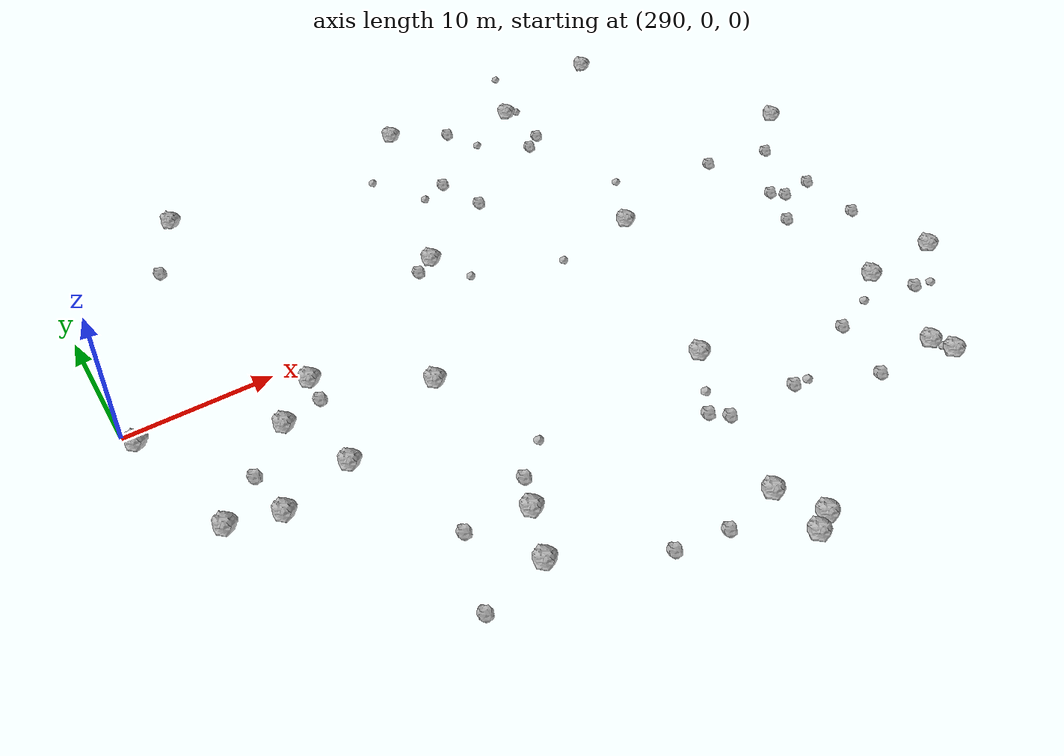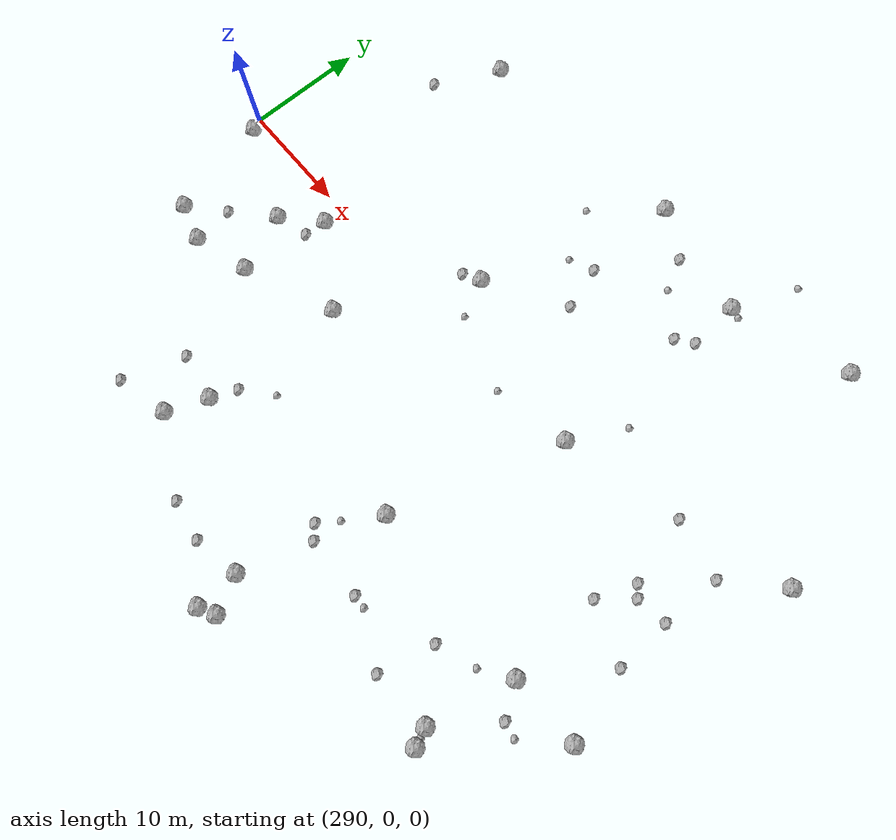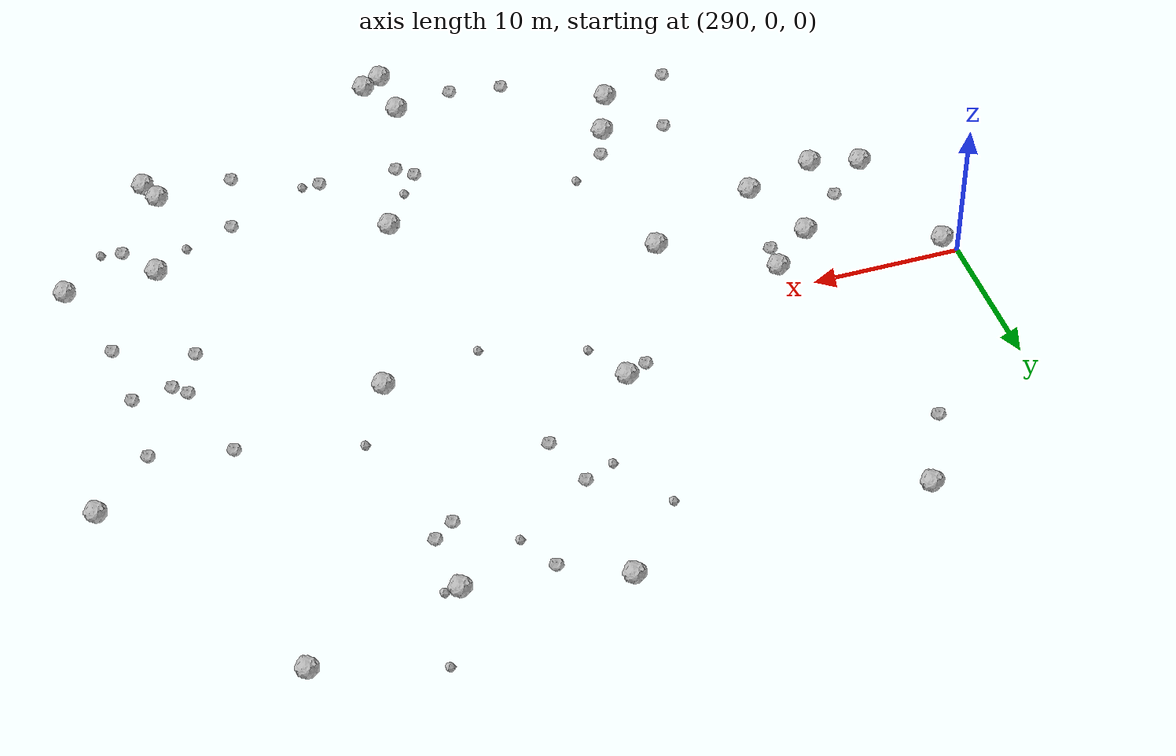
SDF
<sdf version="1.6">
 <world name="default">
  <include><uri>model://sun</uri></include>
  <model name="rock1_8_3">
   <include><uri>model://rock1</uri><pose>322.35427573617596 -27.8120786566923 0.5 0 0 0</pose></include>
  </model>
  <model name="rock1_8_4">
   <include><uri>model://rock1</uri><pose>300.9586548616102 -9.510141757993889 0.5 0 0 0</pose></include>
  </model>
  <model name="rock1_8_5">
   <include><uri>model://rock1</uri><pose>308.670472078037 -6.257436413434906 0.5 0 0 0</pose></include>
  </model>
  <model name="rock1_8_6">
   <include><uri>model://rock1</uri><pose>329.78217315418846 18.626726839483524 0.5 0 0 0</pose></include>
  </model>
  <model name="rock1_8_7">
   <include><uri>model://rock1</uri><pose>290.67351863067097 -1.0464039985542612 0.5 0 0 0</pose></include>
  </model>
  <model name="rock1_8_8">
   <include><uri>model://rock1</uri><pose>298.88788457624474 -4.578165748046363 0.5 0 0 0</pose></include>
  </model>
  <model name="rock1_8_9">
   <include><uri>model://rock1</uri><pose>339.14073869403353 -22.465012377297057 0.5 0 0 0</pose></include>
  </model>
  <model name="rock1_8_10">
   <include><uri>model://rock1</uri><pose>348.7971757759575 6.022667178202482 0.5 0 0 0</pose></include>
  </model>
  <model name="rock1_8_11">
   <include><uri>model://rock1</uri><pose>306.8754588863286 -21.741113683573072 0.5 0 0 0</pose></include>
  </model>
  <model name="rock1_8_12">
   <include><uri>model://rock1</uri><pose>324.69543472986385 -13.538364629315382 0.5 0 0 0</pose></include>
  </model>
  <model name="rock1_8_13">
   <include><uri>model://rock1</uri><pose>296.1206339826503 -10.89327196215632 0.5 0 0 0</pose></include>
  </model>
  <model name="rock1_8_14">
   <include><uri>model://rock1</uri><pose>339.9978219828622 21.874479917883882 0.5 0 0 0</pose></include>
  </model>
  <model name="rock1_8_15">
   <include><uri>model://rock1</uri><pose>319.7007215105777 20.78113839658375 0.5 0 0 0</pose></include>
  </model>
  <model name="rock1_8_16">
   <include><uri>model://rock1</uri><pose>314.519607033885 4.690379749493346 0.5 0 0 0</pose></include>
  </model>
  <model name="rock1_8_17">
   <include><uri>model://rock1</uri><pose>308.24518439240467 -18.341041085042328 0.5 0 0 0</pose></include>
  </model>
  <model name="rock1_8_18">
   <include><uri>model://rock1</uri><pose>338.5214885994548 -21.008370887613786 0.5 0 0 0</pose></include>
  </model>
  <model name="rock1_8_19">
   <include><uri>model://rock1</uri><pose>329.28288420714756 0.7832009118711483 0.5 0 0 0</pose></include>
  </model>
  <model name="rock1_8_20">
   <include><uri>model://rock1</uri><pose>300.07731475310794 19.298754428426996 0.5 0 0 0</pose></include>
  </model>
  <model name="rock1_8_21">
   <include><uri>model://rock1</uri><pose>301.8533972839135 -1.839665752010113 0.5 0 0 0</pose></include>
  </model>
  <model name="rock1_8_22">
   <include><uri>model://rock1</uri><pose>346.3531371436534 -13.710578872330444 0.5 0 0 0</pose></include>
  </model>
  <model name="rock1_8_23">
   <include><uri>model://rock1</uri><pose>320.8395063264479 -24.908244074515633 0.5 0 0 0</pose></include>
  </model>
  <model name="rock1_8_24">
   <include><uri>model://rock1</uri><pose>292.8788406539268 -9.97718281764698 0.5 0 0 0</pose></include>
  </model>
  <model name="rock1_8_25">
   <include><uri>model://rock1</uri><pose>321.00270330148766 -28.539713879244758 0.5 0 0 0</pose></include>
  </model>
  <model name="rock1_8_26">
   <include><uri>model://rock1</uri><pose>340.265943749233 -13.93120928389839 0.5 0 0 0</pose></include>
  </model>
  <model name="rock2_8_0">
   <include><uri>model://rock2</uri><pose>341.9350264234805 -16.429490157431772 0.3 0 0 0</pose></include>
  </model>
  <model name="rock2_8_1">
   <include><uri>model://rock2</uri><pose>302.2879323446587 -22.849262023688862 0.3 0 0 0</pose></include>
  </model>
  <model name="rock2_8_2">
   <include><uri>model://rock2</uri><pose>297.29031121959025 13.903346981176142 0.3 0 0 0</pose></include>
  </model>
  <model name="rock2_8_3">
   <include><uri>model://rock2</uri><pose>329.99986167461293 14.328566893238722 0.3 0 0 0</pose></include>
  </model>
  <model name="rock2_8_4">
   <include><uri>model://rock2</uri><pose>321.6064871164848 -18.057476670732562 0.3 0 0 0</pose></include>
  </model>
  <model name="rock2_8_5">
   <include><uri>model://rock2</uri><pose>313.29083509963334 -25.105779314721048 0.3 0 0 0</pose></include>
  </model>
  <model name="rock2_8_6">
   <include><uri>model://rock2</uri><pose>313.0002128136193 3.9397050932084383 0.3 0 0 0</pose></include>
  </model>
  <model name="rock2_8_7">
   <include><uri>model://rock2</uri><pose>339.7052386989119 -5.708544189869851 0.3 0 0 0</pose></include>
  </model>
  <model name="rock2_8_8">
   <include><uri>model://rock2</uri><pose>344.6453662082817 -7.586442757398583 0.3 0 0 0</pose></include>
  </model>
  <model name="rock2_8_9">
   <include><uri>model://rock2</uri><pose>328.60601938618197 13.281344848444043 0.3 0 0 0</pose></include>
  </model>
  <model name="rock2_8_10">
   <include><uri>model://rock2</uri><pose>323.78700861571446 18.552122617560627 0.3 0 0 0</pose></include>
  </model>
  <model name="rock2_8_11">
   <include><uri>model://rock2</uri><pose>339.515075730701 3.3110967344126365 0.3 0 0 0</pose></include>
  </model>
  <model name="rock2_8_12">
   <include><uri>model://rock2</uri><pose>321.01578464158536 8.786214964886732 0.3 0 0 0</pose></include>
  </model>
  <model name="rock2_8_13">
   <include><uri>model://rock2</uri><pose>327.8864866664917 -19.10045205864256 0.3 0 0 0</pose></include>
  </model>
  <model name="rock2_8_14">
   <include><uri>model://rock2</uri><pose>344.4685358470975 -2.8748289883946008 0.3 0 0 0</pose></include>
  </model>
  <model name="rock2_8_15">
   <include><uri>model://rock2</uri><pose>319.8697563937299 12.448178809300813 0.3 0 0 0</pose></include>
  </model>
  <model name="rock2_8_16">
   <include><uri>model://rock2</uri><pose>316.8066480277689 -25.648781281965128 0.3 0 0 0</pose></include>
  </model>
  <model name="rock2_8_17">
   <include><uri>model://rock2</uri><pose>334.5169083282633 -16.766925053323874 0.3 0 0 0</pose></include>
  </model>
  <model name="rock2_8_18">
   <include><uri>model://rock2</uri><pose>340.99412768738864 -2.433380590035611 0.3 0 0 0</pose></include>
  </model>
  <model name="rock2_8_19">
   <include><uri>model://rock2</uri><pose>301.63740654989954 -3.73580321750962 0.3 0 0 0</pose></include>
  </model>
  <model name="rock2_8_20">
   <include><uri>model://rock2</uri><pose>304.05136508392053 -17.656436320858365 0.3 0 0 0</pose></include>
  </model>
  <model name="rock2_8_21">
   <include><uri>model://rock2</uri><pose>309.0770994859791 -16.152517621896838 0.3 0 0 0</pose></include>
  </model>
  <model name="rock2_8_22">
   <include><uri>model://rock2</uri><pose>295.66132417842005 -7.44069044964689 0.3 0 0 0</pose></include>
  </model>
  <model name="rock2_8_23">
   <include><uri>model://rock2</uri><pose>333.3724223797914 -21.377636232963297 0.3 0 0 0</pose></include>
  </model>
  <model name="rock2_8_24">
   <include><uri>model://rock2</uri><pose>344.6594350242049 2.2195632054396697 0.3 0 0 0</pose></include>
  </model>
  <model name="rock2_8_25">
   <include><uri>model://rock2</uri><pose>341.8175645673258 -3.229009733448546 0.3 0 0 0</pose></include>
  </model>
  <model name="rock2_8_26">
   <include><uri>model://rock2</uri><pose>322.6361834583731 -18.959685265053785 0.3 0 0 0</pose></include>
  </model>
  <model name="rock3_8_0">
   <include><uri>model://rock3</uri><pose>322.7391550588064 -16.48016059907032 0.2 0 0 0</pose></include>
  </model>
  <model name="rock3_8_1">
   <include><uri>model://rock3</uri><pose>330.66879200665835 18.520383523679826 0.2 0 0 0</pose></include>
  </model>
  <model name="rock3_8_2">
   <include><uri>model://rock3</uri><pose>338.84697097567016 -21.816160213617913 0.2 0 0 0</pose></include>
  </model>
  <model name="rock3_8_3">
   <include><uri>model://rock3</uri><pose>331.7143557862107 5.355572387190506 0.2 0 0 0</pose></include>
  </model>
  <model name="rock3_8_4">
   <include><uri>model://rock3</uri><pose>332.04931152283416 24.12799668593786 0.2 0 0 0</pose></include>
  </model>
  <model name="rock3_8_5">
   <include><uri>model://rock3</uri><pose>322.6236862842613 -0.5308427636719841 0.2 0 0 0</pose></include>
  </model>
  <model name="rock3_8_6">
   <include><uri>model://rock3</uri><pose>317.78284111645314 11.54762645025437 0.2 0 0 0</pose></include>
  </model>
  <model name="rock3_8_7">
   <include><uri>model://rock3</uri><pose>329.0138234712788 -19.208440450408247 0.2 0 0 0</pose></include>
  </model>
  <model name="rock3_8_8">
   <include><uri>model://rock3</uri><pose>316.006380569927 1.5911160041897858 0.2 0 0 0</pose></include>
  </model>
  <model name="rock3_8_9">
   <include><uri>model://rock3</uri><pose>325.13472209710034 15.866927239025316 0.2 0 0 0</pose></include>
  </model>
  <model name="rock3_8_10">
   <include><uri>model://rock3</uri><pose>337.79083812624236 -15.635916805692286 0.2 0 0 0</pose></include>
  </model>
  <model name="rock3_8_11">
   <include><uri>model://rock3</uri><pose>315.3345206610142 15.697195995143069 0.2 0 0 0</pose></include>
  </model>
  <model name="rock3_8_12">
   <include><uri>model://rock3</uri><pose>343.2642305726329 -16.74287654898574 0.2 0 0 0</pose></include>
  </model>
  <model name="rock3_8_13">
   <include><uri>model://rock3</uri><pose>311.44634946402124 -14.1534661764687 0.2 0 0 0</pose></include>
  </model>
 </world>
</sdf>
